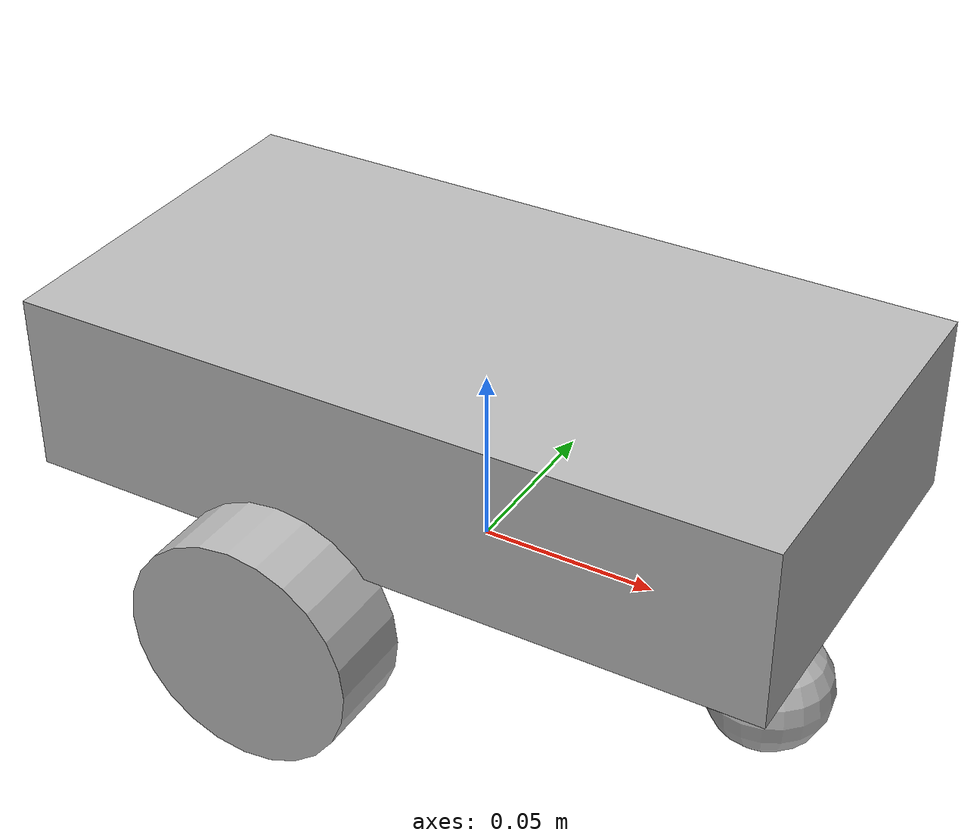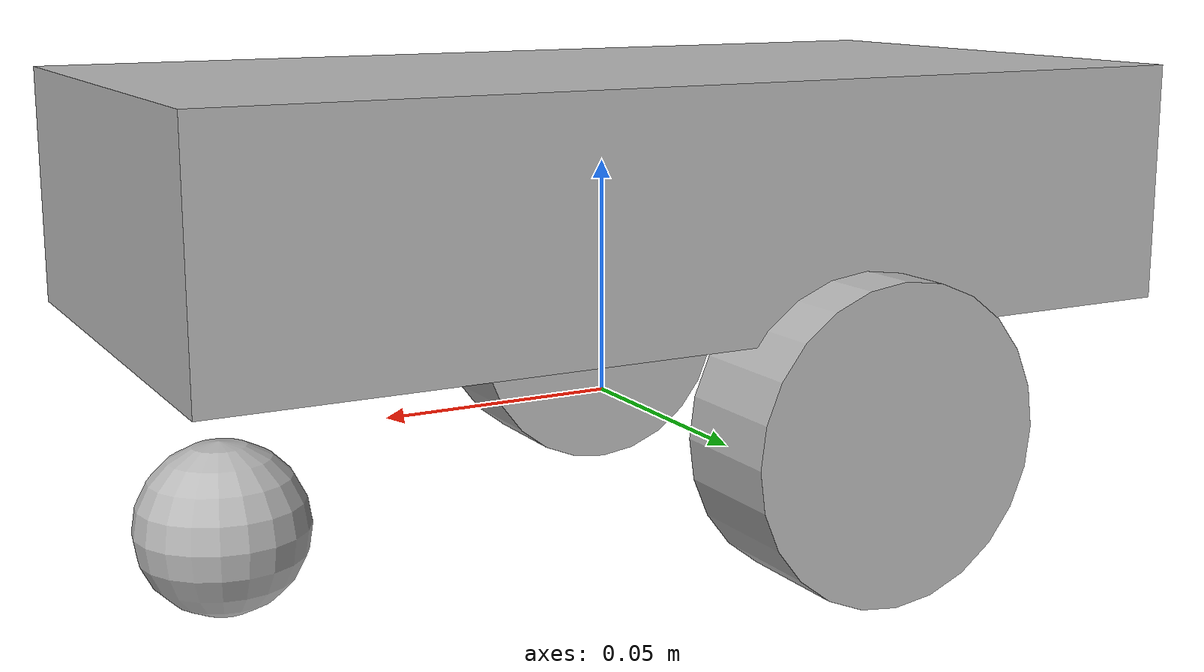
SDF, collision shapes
<?xml version='1.0'?>
<sdf version='1.5'>
  <model name='twd_lidar_robot'>
    <static>false</static>

    <!-- ******************************** ROBOT BASE FOOTPRINT ***************************** -->
    <pose>0 0 0 0 0 0</pose>
    <link name='base_footprint'/>

    <!-- ************************************* ROBOT BASE ****************************** -->
    <link name='base_link'>
      <pose>0 0 0.045 0 0 0</pose>
      <collision name='base_link_collision'>
        <geometry>
          <box>
            <size>.21 .11 .05</size>
          </box>
        </geometry>
      </collision>
      <visual name='base_link_visual'>
      <pose>0 0 -0.045 0 0 0</pose>
        <geometry>
          <mesh>
            <uri>model://lidar_robot_description/meshes/robot_base_link.dae</uri>
          </mesh>
        </geometry>
      </visual>

      <collision name='caster_mount_collision'>
        <geometry>
          <cylinder>
            <radius>0.017</radius>
            <length>0.0125</length>
          </cylinder>
        </geometry>
      </collision>
      <visual name='caster_mount_visual'>
        <pose>0.086 0 -0.08 0 0 0</pose>
        <geometry>
          <mesh>
            <uri>model://lidar_robot_description/meshes/caster_mount.dae</uri>
          </mesh>
        </geometry>
      </visual>

      <!-- Raspberry Pi 4 -->
      <collision name='rpi_4_collision'>
        <geometry>
          <box>
            <size>0.085 0.056 0.018</size>
          </box>
        </geometry>
      </collision>
      <visual name='rpi_4_visual'>
        <pose>-0.05 0 -0.028 0 0 1.5707</pose>
        <geometry>
          <mesh>
            <uri>model://lidar_robot_description/meshes/rpi_4.dae</uri>
          </mesh>
        </geometry>
      </visual>

      <collision name='rplidar_base_collision'>
        <geometry>
          <box>
            <size>0.0968 0.07 0.035</size>
          </box>
        </geometry>
      </collision>
      <visual name='rplidar_base_visual'>
      <pose>0.068 -0.001 -0.0325 0 0 3.142</pose>
        <geometry>
          <mesh>
            <uri>model://lidar_robot_description/meshes/rplidar_base.dae</uri>
          </mesh>
        </geometry>
      </visual>
    </link>

    <!-- Left wheel link  -->
    <link name='left_wheel'>
      <pose>-0.0288 0.055 0 0 1.5707 1.5707</pose>
      <inertial>
        <mass>0.13</mass>
        <inertia>
          <ixx>0.001</ixx>
          <ixy>0.0</ixy>
          <ixz>0.0</ixz>
          <iyy>0.001</iyy>
          <iyz>0.0</iyz>
          <izz>0.001</izz>
        </inertia>
      </inertial>

      <collision name='left_wheel_collision'>
        <geometry>
          <cylinder>
            <radius>0.0325</radius>
            <length>0.025</length>
          </cylinder>
        </geometry>
      </collision>

      <visual name='left_wheel_visual'>
        <geometry>
          <mesh>
            <uri>model://lidar_robot_description/meshes/left_wheel.dae</uri>
          </mesh>
        </geometry>
      </visual>
    </link>

    <!-- Right robot wheel  -->
    <link name='right_wheel'>
      <pose>-0.0288 -0.064 0 0 1.5707 1.5707</pose>
      <inertial>
        <mass>0.13</mass>
        <inertia>
          <ixx>0.001</ixx>
          <ixy>0.0</ixy>
          <ixz>0.0</ixz>
          <iyy>0.001</iyy>
          <iyz>0.0</iyz>
          <izz>0.001</izz>
        </inertia>
      </inertial>
      <collision name='right_wheel_collision'>
        <geometry>
          <cylinder>
            <radius>0.0325</radius>
            <length>0.025</length>
          </cylinder>
        </geometry>
      </collision>

      <visual name='right_wheel_visual'>
        <geometry>
          <mesh>
            <uri>model://lidar_robot_description/meshes/right_wheel.dae</uri>
          </mesh>
        </geometry>
      </visual>
    </link>

    <!-- Caster wheel -->
    <link name='caster_wheel'>
      <pose>0.085 0 -0.0175 0 0 1.5707</pose>
      <inertial>
        <mass>0.13</mass>
        <inertia>
          <ixx>0.001</ixx>
          <ixy>0.0</ixy>
          <ixz>0.0</ixz>
          <iyy>0.001</iyy>
          <iyz>0.0</iyz>
          <izz>0.001</izz>
        </inertia>
      </inertial>
      <collision name='caster_wheel_collision'>
        <geometry>
          <sphere>
            <radius>0.0175</radius>
          </sphere>
        </geometry>
        <surface>
          <friction>
            <ode>
              <!-- Sort out these values  -->
              <mu>0.01</mu>
              <mu2>0.01</mu2>
              <slip1>1.0</slip1>
              <slip2>1.0</slip2>
            </ode>
          </friction>
        </surface>
      </collision>
      <visual name='caster_wheel_visual'>
        <pose>0 -0.007 0 0 0 0</pose>
        <geometry>
          <mesh>
            <uri>model://lidar_robot_description/meshes/caster_wheel.dae</uri>
          </mesh>
        </geometry>
      </visual>
    </link>

    <!-- Rplidar top link -->
    <link name='rplidar_top'>
      <pose>0.068 0.0027 0.045 0 0 1.0707</pose>
        <!-- mass of 70 grams is an approximation -->
      <collision name='rplidar_top_collision'>
        <geometry>
          <cylinder>
            <radius>0.035</radius>
            <length>0.021</length>
          </cylinder>
        </geometry>
      </collision>
      <visual name='rplidar_top_visual'>
        <geometry>
          <mesh>
            <uri>model://lidar_robot_description/meshes/rplidar_top.dae</uri>
          </mesh>
        </geometry>
      </visual>

      <!-- Add sensor -->
      <sensor type='ray' name='rplidar'>
        <!-- Position ray sensor in one of the "sensor eyes" to output horizontal
        rays -->
        <pose>0 0 0.01 0 0 -0.7854</pose>
        <always_on>true</always_on>
        <!-- Enable visualization to see the rays in the GUI -->
        <visualize>true</visualize>
        <update_rate>5.5</update_rate>
        <ray>
          <scan>
            <horizontal>
              <samples>360</samples>
              <resolution>1</resolution>
              <min_angle>0.000000</min_angle>
              <max_angle>6.280000</max_angle>
            </horizontal>
          </scan>
          <!-- Range defines characteristics of an individual beam -->
          <range>
            <min>0.15</min>
            <max>12</max>
            <!-- Linear resolution of the beam CONFIRM THIS -->
            <resolution>0.015</resolution>
          </range>
            <noise>
              <type>gaussian</type>
              <mean>0.0</mean>
              <stddev>0.02</stddev>
            </noise>
        </ray>

        <!-- Plugin comment -->
        <plugin name="scan" filename="libgazebo_ros_ray_sensor.so">
          <ros>
            <remapping>~/out:=scan</remapping>
          </ros>
          <output_type>sensor_msgs/LaserScan</output_type>
          <frame_name>rplidar_top</frame_name>
        </plugin>
      </sensor>
    </link>

    <!-- Joints  -->
    <joint name="base_joint" type="fixed">
      <pose>0 0 0 0 0 0</pose>
      <parent>base_footprint</parent>
      <child>base_link</child>
    </joint>

    <!-- Left wheel hinge  -->
    <joint  name='left_wheel_hinge' type='revolute'>
      <pose>0 0 0 0 0 0</pose>
      <parent>base_link</parent>
      <child>left_wheel</child>
      <axis>
        <xyz>0 0 1</xyz>
        <limit>
          <lower>-1e+14</lower>
          <upper>1e+14</upper>
        </limit>
      </axis>
    </joint>

    <!-- Right wheel hinge  -->
    <joint name='right_wheel_hinge' type='revolute'>
      <pose>0 0 0 0 0 0</pose>
      <parent>base_link</parent>
      <child>right_wheel</child>
      <axis>
        <xyz>0 0 1</xyz>
        <limit>
          <lower>-1e+14</lower>
          <upper>1e+14</upper>
        </limit>
      </axis>
    </joint>

    <!-- Caster wheel joint  -->
    <joint name='caster_joint' type='revolute'>
      <pose>0 0 0 0 0 0</pose>
      <parent>base_link</parent>
      <child>caster_wheel</child>
      <axis>
        <xyz>0 0 1</xyz>
        <limit>
          <lower>-1e+14</lower>
          <upper>1e+14</upper>
        </limit>
      </axis>
    </joint>

    <!-- Rplidar joint  -->
    <joint type='revolute' name='rplidar_joint'>
      <pose>0 0 0 0 0 0</pose>
      <!-- Use rplidar top as the child of the joint -->
      <child>rplidar_top</child>
      <!-- Use the base_link link as the parent of the joint -->
      <parent>base_link</parent>
      <!-- The axis defines the joint's degree of freedom -->
      <axis>
        <!-- Revolve around the z-axis -->
        <xyz>0 0 1</xyz>
        <!-- Limit here refers to the range of motion of the joint  -->
        <limit>
          <!-- A very large number is used to indicate a continuous revolution -->
          <lower>-100000000000000</lower>
          <upper>100000000000000</upper>
        </limit>
      </axis>
    </joint>

    <!-- ***************************************** WHEEL ODOMETRY **************************************** -->
    <plugin name='twd_lidar_robot_diff_drive' filename='libgazebo_ros_diff_drive.so'>
      <!-- Maybe adjust later -->
      <!-- Update rate in Hz -->
      <update_rate>30</update_rate>
      <!-- wheels -->
      <left_joint>left_wheel_hinge</left_joint>
      <right_joint>right_wheel_hinge</right_joint>

      <!-- kinematics -->
      <!-- The distance from the center of one wheel to the other -->
      <wheel_separation>0.138</wheel_separation>
      <wheel_diameter>0.065</wheel_diameter>
      <!-- limits -->
      <!-- Nm -->
      <max_wheel_torque>0.60</max_wheel_torque>
      <!-- Use parameters from diffbot for now -->
      <max_wheel_acceleration>1.8</max_wheel_acceleration>
      <!-- Receive velocity commands on this ROS topic -->
      <command_topic>cmd_vel</command_topic>
      <!-- Output. When false, publish no wheel odometry data to a ROS topic -->
      <publish_odom>true</publish_odom>
      <!-- When true, publish coordinate transform from odom to base_footprint -->
      <!-- Addison usually uses the robot_localization package to publish this transform -->
      <publish_odom_tf>false</publish_odom_tf>
      <!-- When true, publish coordinate transform from base_link to the wheels -->
      <!-- The robot_state_publisher package is often used to publish this transform -->
      <publish_wheel_tf>false</publish_wheel_tf>
      <!-- Topic to publish nav_msgs/Odometry messages, defaults to `odom` -->
      <odometry_topic>odom</odometry_topic>
      <!-- Odometry frame, defaults to `odom` -->
      <odometry_frame>odom</odometry_frame>
      <!-- Robot frame to calculate odometry from, defaults to `base_footprint` -->
      <robot_base_frame>base_footprint</robot_base_frame>
      <!-- Odometry source, 0 for ENCODER, 1 for WORLD, defaults to WORLD -->
      <odometry_source>1</odometry_source>
      <!-- Change the ROS topic we will publish the odometry data to -->
      <ros>
        <remapping>odom:=wheel/odometry</remapping>
      </ros>
    </plugin>

    <!-- **************************************** JOINT STATE PUBLISHER ********************************** -->
    <plugin name="twd_lidar_robot_joint_state" filename="libgazebo_ros_joint_state_publisher.so">
      <ros>
        <remapping>~/out:=joint_states</remapping>
      </ros>
      <update_rate>30</update_rate>
      <joint_name>left_wheel_hinge</joint_name>
      <joint_name>right_wheel_hinge</joint_name>
    </plugin>
  </model>
</sdf>

<!-- I don't think it should be called a caster wheel. If that is so, we need to rename it everywhere even on github. -->
<!-- explain caster mount and caster wheel diff -->
<!-- Later later add material to color things up -->
